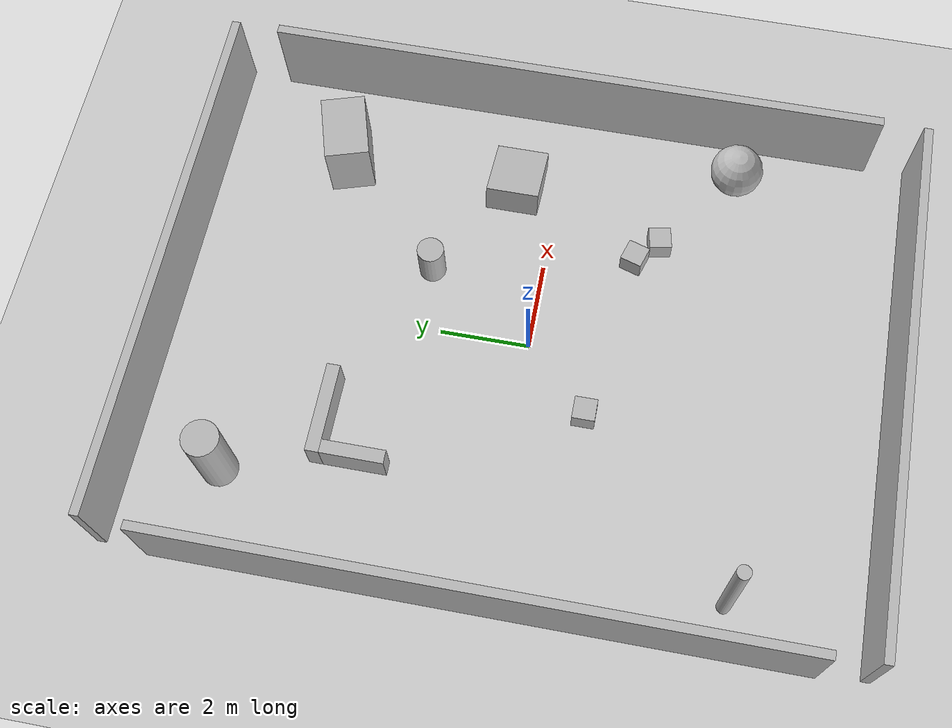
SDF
<?xml version="1.0" ?>
<sdf version='1.6'>
  <world name='gravel'>

    <!-- Gazebo State Publisher Plugin -->
    <plugin name="gazebo_ros_state" filename="libgazebo_ros_state.so">
      <ros>
        <namespace></namespace>
        <remapping>model_states:=gazebo/model_states</remapping>
        <remapping>link_states:=gazebo/link_states</remapping>
      </ros>
      <update_rate>50.0</update_rate>
    </plugin>

    <include>
      <uri>model://sun</uri>
    </include>

    <!-- Add ground plane -->
    <include>
      <uri>model://ground_plane</uri>
    </include>

    <spherical_coordinates>
      <surface_model>EARTH_WGS84</surface_model>
      <latitude_deg>37.4275</latitude_deg>
      <longitude_deg>-122.1697</longitude_deg>
      <elevation>0.0</elevation>
      <heading_deg>0.0</heading_deg>
    </spherical_coordinates>

    <!-- Four walls forming a boundary  -->
    <!-- North Wall -->
    <model name="wall_north">
      <static>true</static>
      <pose>0 8 1 0 0 0</pose>
      <link name="link">
        <collision name="collision">
          <geometry>
            <box>
              <size>12 0.2 2</size>
            </box>
          </geometry>
        </collision>
        <visual name="visual">
          <geometry>
            <box>
              <size>12 0.2 2</size>
            </box>
          </geometry>
        </visual>
      </link>
    </model>

    <!-- South Wall -->
    <model name="wall_south">
      <static>true</static>
      <pose>0 -8 1 0 0 0</pose>
      <link name="link">
        <collision name="collision">
          <geometry>
            <box>
              <size>12 0.2 2</size>
            </box>
          </geometry>
        </collision>
        <visual name="visual">
          <geometry>
            <box>
              <size>12 0.2 2</size>
            </box>
          </geometry>
        </visual>
      </link>
    </model>

    <!-- East Wall -->
    <model name="wall_east">
      <static>true</static>
      <pose>6 0 1 0 0 0</pose>
      <link name="link">
        <collision name="collision">
          <geometry>
            <box>
              <size>0.2 14 2</size>
            </box>
          </geometry>
        </collision>
        <visual name="visual">
          <geometry>
            <box>
              <size>0.2 14 2</size>
            </box>
          </geometry>
        </visual>
      </link>
    </model>

    <!-- West Wall -->
    <model name="wall_west">
      <static>true</static>
      <pose>-6 0 1 0 0 0</pose>
      <link name="link">
        <collision name="collision">
          <geometry>
            <box>
              <size>0.2 14 2</size>
            </box>
          </geometry>
        </collision>
        <visual name="visual">
          <geometry>
            <box>
              <size>0.2 14 2</size>
            </box>
          </geometry>
        </visual>
      </link>
    </model>

    <!-- Diverse Obstacles -->

    <!-- Large box in northeast quadrant -->
    <model name="large_box">
      <static>true</static>
      <pose>4 5 0.75 0 0 0.3</pose>
      <link name="link">
        <collision name="collision">
          <geometry>
            <box>
              <size>1.5 1 1.5</size>
            </box>
          </geometry>
        </collision>
        <visual name="visual">
          <geometry>
            <box>
              <size>1.5 1 1.5</size>
            </box>
          </geometry>
        </visual>
      </link>
    </model>

    <!-- Tall cylinder in northwest quadrant -->
    <model name="tall_pillar">
      <static>true</static>
      <pose>-4 6 1 0 0 0</pose>
      <link name="link">
        <collision name="collision">
          <geometry>
            <cylinder>
              <radius>0.4</radius>
              <length>2.0</length>
            </cylinder>
          </geometry>
        </collision>
        <visual name="visual">
          <geometry>
            <cylinder>
              <radius>0.4</radius>
              <length>2.0</length>
            </cylinder>
          </geometry>
        </visual>
      </link>
    </model>

    <!-- Sphere in southeast quadrant -->
    <model name="large_sphere">
      <static>true</static>
      <pose>5 -4 0.6 0 0 0</pose>
      <link name="link">
        <collision name="collision">
          <geometry>
            <sphere>
              <radius>0.6</radius>
            </sphere>
          </geometry>
        </collision>
        <visual name="visual">
          <geometry>
            <sphere>
              <radius>0.6</radius>
            </sphere>
          </geometry>
        </visual>
      </link>
    </model>

    <!-- Thin column in southwest quadrant -->
    <model name="thin_column">
      <static>true</static>
      <pose>-5 -5 1.5 0 0 0</pose>
      <link name="link">
        <collision name="collision">
          <geometry>
            <cylinder>
              <radius>0.15</radius>
              <length>3.0</length>
            </cylinder>
          </geometry>
        </collision>
        <visual name="visual">
          <geometry>
            <cylinder>
              <radius>0.15</radius>
              <length>3.0</length>
            </cylinder>
          </geometry>
        </visual>
      </link>
    </model>

    <!-- Small boxes cluster  -->
    <model name="small_box_1">
      <static>true</static>
      <pose>3 -2.5 0.25 0 0 0.2</pose>
      <link name="link">
        <collision name="collision">
          <geometry>
            <box>
              <size>0.5 0.5 0.5</size>
            </box>
          </geometry>
        </collision>
        <visual name="visual">
          <geometry>
            <box>
              <size>0.5 0.5 0.5</size>
            </box>
          </geometry>
        </visual>
      </link>
    </model>

    <model name="small_box_2">
      <static>true</static>
      <pose>2.5 -2 0.25 0 0 -0.3</pose>
      <link name="link">
        <collision name="collision">
          <geometry>
            <box>
              <size>0.5 0.5 0.5</size>
            </box>
          </geometry>
        </collision>
        <visual name="visual">
          <geometry>
            <box>
              <size>0.5 0.5 0.5</size>
            </box>
          </geometry>
        </visual>
      </link>
    </model>

    <!-- L-shaped obstacle -->
    <model name="l_obstacle_1">
      <static>true</static>
      <pose>-2.5 4 0.4 0 0 0</pose>
      <link name="link">
        <collision name="collision">
          <geometry>
            <box>
              <size>2.0 0.3 0.8</size>
            </box>
          </geometry>
        </collision>
        <visual name="visual">
          <geometry>
            <box>
              <size>2.0 0.3 0.8</size>
            </box>
          </geometry>
        </visual>
      </link>
    </model>

    <model name="l_obstacle_2">
      <static>true</static>
      <pose>-3.35 3.15 0.4 0 0 0</pose>
      <link name="link">
        <collision name="collision">
          <geometry>
            <box>
              <size>0.3 1.4 0.8</size>
            </box>
          </geometry>
        </collision>
        <visual name="visual">
          <geometry>
            <box>
              <size>0.3 1.4 0.8</size>
            </box>
          </geometry>
        </visual>
      </link>
    </model>

    <!-- Ramp  -->
    <model name="angled_ramp">
      <static>true</static>
      <pose>4 1 0.3 0 0.3 0</pose>
      <link name="link">
        <collision name="collision">
          <geometry>
            <box>
              <size>1.5 1.2 0.6</size>
            </box>
          </geometry>
        </collision>
        <visual name="visual">
          <geometry>
            <box>
              <size>1.5 1.2 0.6</size>
            </box>
          </geometry>
        </visual>
      </link>
    </model>

    <!-- Medium cylinder near center but offset -->
    <model name="medium_pillar">
      <static>true</static>
      <pose>1.5 2.5 0.5 0 0 0</pose>
      <link name="link">
        <collision name="collision">
          <geometry>
            <cylinder>
              <radius>0.3</radius>
              <length>1.0</length>
            </cylinder>
          </geometry>
        </collision>
        <visual name="visual">
          <geometry>
            <cylinder>
              <radius>0.3</radius>
              <length>1.0</length>
            </cylinder>
          </geometry>
        </visual>
      </link>
    </model>

    <!-- Keep the dynamic object  -->
    <model name="dynamic_box">
      <pose>-1.5 -1.5 0.5 0 0 0</pose>
      <link name="link">
        <inertial>
          <mass>1.0</mass>
          <inertia>
            <ixx>0.17</ixx>
            <iyy>0.17</iyy>
            <izz>0.17</izz>
          </inertia>
        </inertial>
        <collision name="collision">
          <geometry>
            <box>
              <size>0.5 0.5 0.5</size>
            </box>
          </geometry>
        </collision>
        <visual name="visual">
          <geometry>
            <box>
              <size>0.5 0.5 0.5</size>
            </box>
          </geometry>
        </visual>
      </link>

      <!-- Simple movement plugin -->
      <plugin name="box_mover" filename="libgazebo_ros_force.so">
        <ros>
          <namespace>dynamic_box</namespace>
          <remapping>gazebo/apply_body_wrench:=apply_force</remapping>
        </ros>
        <link_name>dynamic_box::link</link_name>
        <force_topic>force</force_topic>
      </plugin>
    </model>

    <gui fullscreen='0'>
      <camera name='user_camera'>
        <pose frame=''>12.0 -15.0 8.0 0.0 0.4 2.4</pose>
        <view_controller>orbit</view_controller>
        <projection_type>perspective</projection_type>
      </camera>
    </gui>

  </world>
</sdf>
